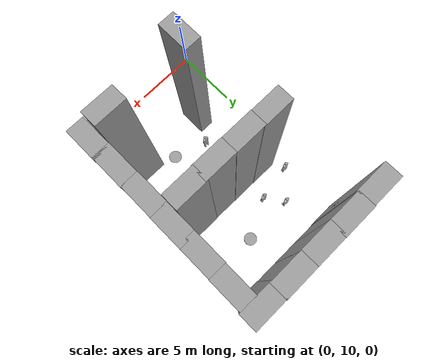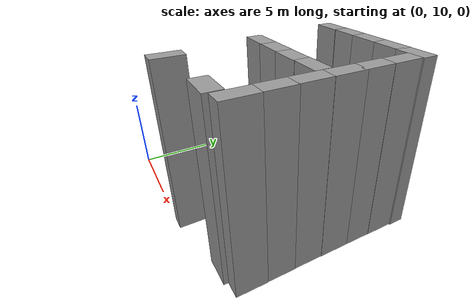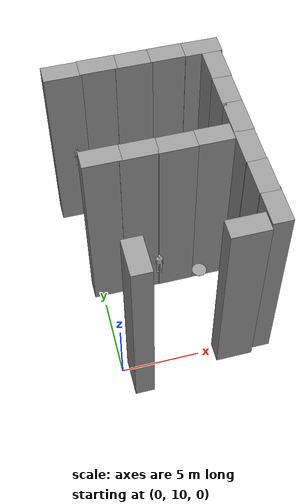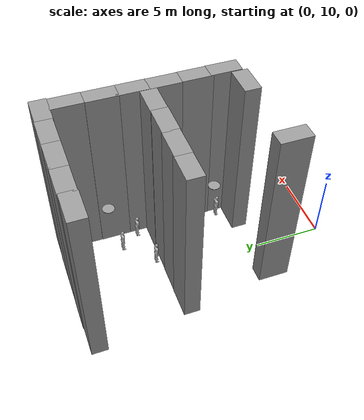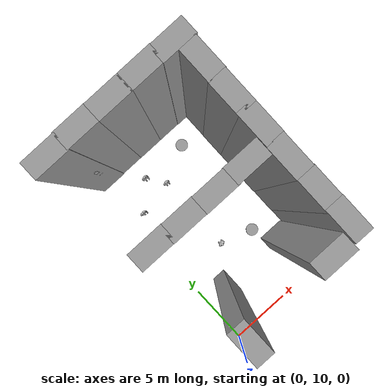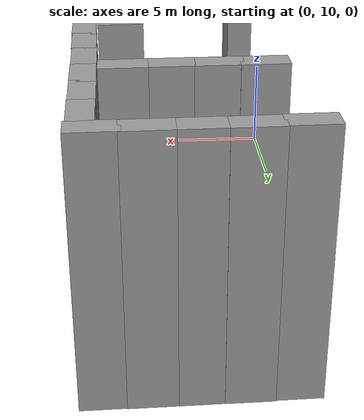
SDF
<sdf version="1.6">
 <model name="indoor_2">
  <link name="link_0_clone_2_clone_1_clone_clone">
   <pose>6.77843 15.9154 0.5 0 -0 0</pose>
   <inertial>
    <mass>0.0318769</mass>
    <inertia>
     <ixx>0.00199501</ixx>
     <ixy>0</ixy>
     <ixz>0</ixz>
     <iyy>0.00199501</iyy>
     <iyz>0</iyz>
     <izz>0.00398461</izz>
    </inertia>
   </inertial>
   <visual name="visual">
    <geometry><cylinder><radius>0.5</radius><length>0.0318771</length></cylinder></geometry>
    <material>
     <lighting>1</lighting>
     <script><uri>file://media/materials/scripts/gazebo.material</uri><name>Gazebo/Grey</name></script>
     <ambient>0.3 0.3 0.3 1</ambient>
     <diffuse>0.7 0.7 0.7 1</diffuse>
     <specular>0.01 0.01 0.01 1</specular>
     <emissive>0 0 0 1</emissive>
     <shader type="pixel"/>
    </material>
   </visual>
   <collision name="collision">
    <geometry><cylinder><radius>0.5</radius><length>0.031877</length></cylinder></geometry>
    <surface>
     <friction>
      <ode><mu>1</mu><mu2>1</mu2><fdir1>0 0 0</fdir1><slip1>0</slip1><slip2>0</slip2></ode>
      <torsional>
       <coefficient>1</coefficient>
       <patch_radius>0</patch_radius>
       <surface_radius>0</surface_radius>
       <use_patch_radius>1</use_patch_radius>
       <ode><slip>0</slip></ode>
      </torsional>
     </friction>
     <bounce><restitution_coefficient>0</restitution_coefficient><threshold>1e+06</threshold></bounce>
     <contact>
      <collide_without_contact>0</collide_without_contact>
      <collide_without_contact_bitmask>1</collide_without_contact_bitmask>
      <collide_bitmask>1</collide_bitmask>
      <ode>
       <soft_cfm>0</soft_cfm>
       <soft_erp>0.2</soft_erp>
       <kp>1e+13</kp>
       <kd>1</kd>
       <max_vel>0.01</max_vel>
       <min_depth>0</min_depth>
      </ode>
      <bullet>
       <split_impulse>1</split_impulse>
       <split_impulse_penetration_threshold>-0.01</split_impulse_penetration_threshold>
       <soft_cfm>0</soft_cfm>
       <soft_erp>0.2</soft_erp>
       <kp>1e+13</kp>
       <kd>1</kd>
      </bullet>
     </contact>
    </surface>
   </collision>
  </link>
  <link name="link_0_clone_2_clone_4">
   <pose>7.18124 24.9154 0.5 0 -0 0</pose>
   <inertial>
    <mass>0.0318769</mass>
    <inertia>
     <ixx>0.00199501</ixx>
     <ixy>0</ixy>
     <ixz>0</ixz>
     <iyy>0.00199501</iyy>
     <iyz>0</iyz>
     <izz>0.00398461</izz>
    </inertia>
   </inertial>
   <visual name="visual">
    <geometry><cylinder><radius>0.5</radius><length>0.0318771</length></cylinder></geometry>
    <material>
     <lighting>1</lighting>
     <script><uri>file://media/materials/scripts/gazebo.material</uri><name>Gazebo/Grey</name></script>
     <ambient>0.3 0.3 0.3 1</ambient>
     <diffuse>0.7 0.7 0.7 1</diffuse>
     <specular>0.01 0.01 0.01 1</specular>
     <emissive>0 0 0 1</emissive>
     <shader type="pixel"/>
    </material>
   </visual>
   <collision name="collision">
    <geometry><cylinder><radius>0.5</radius><length>0.031877</length></cylinder></geometry>
    <surface>
     <friction>
      <ode><mu>1</mu><mu2>1</mu2><fdir1>0 0 0</fdir1><slip1>0</slip1><slip2>0</slip2></ode>
      <torsional>
       <coefficient>1</coefficient>
       <patch_radius>0</patch_radius>
       <surface_radius>0</surface_radius>
       <use_patch_radius>1</use_patch_radius>
       <ode><slip>0</slip></ode>
      </torsional>
     </friction>
     <bounce><restitution_coefficient>0</restitution_coefficient><threshold>1e+06</threshold></bounce>
     <contact>
      <collide_without_contact>0</collide_without_contact>
      <collide_without_contact_bitmask>1</collide_without_contact_bitmask>
      <collide_bitmask>1</collide_bitmask>
      <ode>
       <soft_cfm>0</soft_cfm>
       <soft_erp>0.2</soft_erp>
       <kp>1e+13</kp>
       <kd>1</kd>
       <max_vel>0.01</max_vel>
       <min_depth>0</min_depth>
      </ode>
      <bullet>
       <split_impulse>1</split_impulse>
       <split_impulse_penetration_threshold>-0.01</split_impulse_penetration_threshold>
       <soft_cfm>0</soft_cfm>
       <soft_erp>0.2</soft_erp>
       <kp>1e+13</kp>
       <kd>1</kd>
      </bullet>
     </contact>
    </surface>
   </collision>
  </link>
  <link name="link_clone_17_clone_clone_0_clone_0">
   <pose>8.63865 12.9154 1.4 0 0 -1.56938</pose>
   <inertial>
    <inertia><ixx>nan</ixx><ixy>0</ixy><ixz>0</ixz><iyy>nan</iyy><iyz>0</iyz><izz>nan</izz></inertia>
    <mass>0</mass>
   </inertial>
   <visual name="visual">
    <cast_shadows>0</cast_shadows>
    <geometry><box><size>1.37568 2.64508 15.4314</size></box></geometry>
    <material>
     <script>
      <uri>model://grey_wall/materials/scripts</uri>
      <uri>model://grey_wall/materials/textures</uri>
      <name>vrc/grey_wall</name>
     </script>
     <ambient>1 1 1 1</ambient>
     <diffuse>1 1 1 1</diffuse>
     <specular>0 0 0 1</specular>
     <emissive>0 0 0 1</emissive>
     <shader type="pixel"/>
    </material>
   </visual>
   <collision name="collision">
    <geometry><box><size>1.37568 2.64508 15.4314</size></box></geometry>
    <surface>
     <friction>
      <ode><mu>1</mu><mu2>1</mu2><fdir1>0 0 0</fdir1><slip1>0</slip1><slip2>0</slip2></ode>
      <torsional>
       <coefficient>1</coefficient>
       <patch_radius>0</patch_radius>
       <surface_radius>0</surface_radius>
       <use_patch_radius>1</use_patch_radius>
       <ode><slip>0</slip></ode>
      </torsional>
     </friction>
     <bounce><restitution_coefficient>0</restitution_coefficient><threshold>1e+06</threshold></bounce>
     <contact>
      <collide_without_contact>0</collide_without_contact>
      <collide_without_contact_bitmask>1</collide_without_contact_bitmask>
      <collide_bitmask>1</collide_bitmask>
      <ode>
       <soft_cfm>0</soft_cfm>
       <soft_erp>0.2</soft_erp>
       <kp>1e+13</kp>
       <kd>1</kd>
       <max_vel>0.01</max_vel>
       <min_depth>0</min_depth>
      </ode>
      <bullet>
       <split_impulse>1</split_impulse>
       <split_impulse_penetration_threshold>-0.01</split_impulse_penetration_threshold>
       <soft_cfm>0</soft_cfm>
       <soft_erp>0.2</soft_erp>
       <kp>1e+13</kp>
       <kd>1</kd>
      </bullet>
     </contact>
    </surface>
   </collision>
  </link>
  <link name="link_clone_17_clone_clone_0_clone_0_clone">
   <pose>10.1812 28.4576 1.4 0 0 -1.56938</pose>
   <inertial>
    <inertia><ixx>nan</ixx><ixy>0</ixy><ixz>0</ixz><iyy>nan</iyy><iyz>0</iyz><izz>nan</izz></inertia>
    <mass>0</mass>
   </inertial>
   <visual name="visual">
    <cast_shadows>0</cast_shadows>
    <geometry><box><size>1.37568 2.64508 15.4314</size></box></geometry>
    <material>
     <script>
      <uri>model://grey_wall/materials/scripts</uri>
      <uri>model://grey_wall/materials/textures</uri>
      <name>vrc/grey_wall</name>
     </script>
     <ambient>1 1 1 1</ambient>
     <diffuse>1 1 1 1</diffuse>
     <specular>0 0 0 1</specular>
     <emissive>0 0 0 1</emissive>
     <shader type="pixel"/>
    </material>
   </visual>
   <collision name="collision">
    <geometry><box><size>1.37568 2.64508 15.4314</size></box></geometry>
    <surface>
     <friction>
      <ode><mu>1</mu><mu2>1</mu2><fdir1>0 0 0</fdir1><slip1>0</slip1><slip2>0</slip2></ode>
      <torsional>
       <coefficient>1</coefficient>
       <patch_radius>0</patch_radius>
       <surface_radius>0</surface_radius>
       <use_patch_radius>1</use_patch_radius>
       <ode><slip>0</slip></ode>
      </torsional>
     </friction>
     <bounce><restitution_coefficient>0</restitution_coefficient><threshold>1e+06</threshold></bounce>
     <contact>
      <collide_without_contact>0</collide_without_contact>
      <collide_without_contact_bitmask>1</collide_without_contact_bitmask>
      <collide_bitmask>1</collide_bitmask>
      <ode>
       <soft_cfm>0</soft_cfm>
       <soft_erp>0.2</soft_erp>
       <kp>1e+13</kp>
       <kd>1</kd>
       <max_vel>0.01</max_vel>
       <min_depth>0</min_depth>
      </ode>
      <bullet>
       <split_impulse>1</split_impulse>
       <split_impulse_penetration_threshold>-0.01</split_impulse_penetration_threshold>
       <soft_cfm>0</soft_cfm>
       <soft_erp>0.2</soft_erp>
       <kp>1e+13</kp>
       <kd>1</kd>
      </bullet>
     </contact>
    </surface>
   </collision>
  </link>
  <link name="link_clone_17_clone_clone_0_clone_0_clone_0">
   <pose>7.71607 28.4885 1.4 0 0 -1.56938</pose>
   <inertial>
    <inertia><ixx>nan</ixx><ixy>0</ixy><ixz>0</ixz><iyy>nan</iyy><iyz>0</iyz><izz>nan</izz></inertia>
    <mass>0</mass>
   </inertial>
   <visual name="visual">
    <cast_shadows>0</cast_shadows>
    <geometry><box><size>1.37568 2.64508 15.4314</size></box></geometry>
    <material>
     <script>
      <uri>model://grey_wall/materials/scripts</uri>
      <uri>model://grey_wall/materials/textures</uri>
      <name>vrc/grey_wall</name>
     </script>
     <ambient>1 1 1 1</ambient>
     <diffuse>1 1 1 1</diffuse>
     <specular>0 0 0 1</specular>
     <emissive>0 0 0 1</emissive>
     <shader type="pixel"/>
    </material>
   </visual>
   <collision name="collision">
    <geometry><box><size>1.37568 2.64508 15.4314</size></box></geometry>
    <surface>
     <friction>
      <ode><mu>1</mu><mu2>1</mu2><fdir1>0 0 0</fdir1><slip1>0</slip1><slip2>0</slip2></ode>
      <torsional>
       <coefficient>1</coefficient>
       <patch_radius>0</patch_radius>
       <surface_radius>0</surface_radius>
       <use_patch_radius>1</use_patch_radius>
       <ode><slip>0</slip></ode>
      </torsional>
     </friction>
     <bounce><restitution_coefficient>0</restitution_coefficient><threshold>1e+06</threshold></bounce>
     <contact>
      <collide_without_contact>0</collide_without_contact>
      <collide_without_contact_bitmask>1</collide_without_contact_bitmask>
      <collide_bitmask>1</collide_bitmask>
      <ode>
       <soft_cfm>0</soft_cfm>
       <soft_erp>0.2</soft_erp>
       <kp>1e+13</kp>
       <kd>1</kd>
       <max_vel>0.01</max_vel>
       <min_depth>0</min_depth>
      </ode>
      <bullet>
       <split_impulse>1</split_impulse>
       <split_impulse_penetration_threshold>-0.01</split_impulse_penetration_threshold>
       <soft_cfm>0</soft_cfm>
       <soft_erp>0.2</soft_erp>
       <kp>1e+13</kp>
       <kd>1</kd>
      </bullet>
     </contact>
    </surface>
   </collision>
  </link>
  <link name="link_clone_17_clone_clone_0_clone_0_clone_1">
   <pose>5.18124 28.4831 1.4 0 0 -1.56938</pose>
   <inertial>
    <inertia><ixx>nan</ixx><ixy>0</ixy><ixz>0</ixz><iyy>nan</iyy><iyz>0</iyz><izz>nan</izz></inertia>
    <mass>0</mass>
   </inertial>
   <visual name="visual">
    <cast_shadows>0</cast_shadows>
    <geometry><box><size>1.37568 2.64508 15.4314</size></box></geometry>
    <material>
     <script>
      <uri>model://grey_wall/materials/scripts</uri>
      <uri>model://grey_wall/materials/textures</uri>
      <name>vrc/grey_wall</name>
     </script>
     <ambient>1 1 1 1</ambient>
     <diffuse>1 1 1 1</diffuse>
     <specular>0 0 0 1</specular>
     <emissive>0 0 0 1</emissive>
     <shader type="pixel"/>
    </material>
   </visual>
   <collision name="collision">
    <geometry><box><size>1.37568 2.64508 15.4314</size></box></geometry>
    <surface>
     <friction>
      <ode><mu>1</mu><mu2>1</mu2><fdir1>0 0 0</fdir1><slip1>0</slip1><slip2>0</slip2></ode>
      <torsional>
       <coefficient>1</coefficient>
       <patch_radius>0</patch_radius>
       <surface_radius>0</surface_radius>
       <use_patch_radius>1</use_patch_radius>
       <ode><slip>0</slip></ode>
      </torsional>
     </friction>
     <bounce><restitution_coefficient>0</restitution_coefficient><threshold>1e+06</threshold></bounce>
     <contact>
      <collide_without_contact>0</collide_without_contact>
      <collide_without_contact_bitmask>1</collide_without_contact_bitmask>
      <collide_bitmask>1</collide_bitmask>
      <ode>
       <soft_cfm>0</soft_cfm>
       <soft_erp>0.2</soft_erp>
       <kp>1e+13</kp>
       <kd>1</kd>
       <max_vel>0.01</max_vel>
       <min_depth>0</min_depth>
      </ode>
      <bullet>
       <split_impulse>1</split_impulse>
       <split_impulse_penetration_threshold>-0.01</split_impulse_penetration_threshold>
       <soft_cfm>0</soft_cfm>
       <soft_erp>0.2</soft_erp>
       <kp>1e+13</kp>
       <kd>1</kd>
      </bullet>
     </contact>
    </surface>
   </collision>
  </link>
  <link name="link_clone_17_clone_clone_0_clone_0_clone_2">
   <pose>2.70043 28.4938 1.4 0 0 -1.56938</pose>
   <inertial>
    <inertia><ixx>nan</ixx><ixy>0</ixy><ixz>0</ixz><iyy>nan</iyy><iyz>0</iyz><izz>nan</izz></inertia>
    <mass>0</mass>
   </inertial>
   <visual name="visual">
    <cast_shadows>0</cast_shadows>
    <geometry><box><size>1.37568 2.64508 15.4314</size></box></geometry>
    <material>
     <script>
      <uri>model://grey_wall/materials/scripts</uri>
      <uri>model://grey_wall/materials/textures</uri>
      <name>vrc/grey_wall</name>
     </script>
     <ambient>1 1 1 1</ambient>
     <diffuse>1 1 1 1</diffuse>
     <specular>0 0 0 1</specular>
     <emissive>0 0 0 1</emissive>
     <shader type="pixel"/>
    </material>
   </visual>
   <collision name="collision">
    <geometry><box><size>1.37568 2.64508 15.4314</size></box></geometry>
    <surface>
     <friction>
      <ode><mu>1</mu><mu2>1</mu2><fdir1>0 0 0</fdir1><slip1>0</slip1><slip2>0</slip2></ode>
      <torsional>
       <coefficient>1</coefficient>
       <patch_radius>0</patch_radius>
       <surface_radius>0</surface_radius>
       <use_patch_radius>1</use_patch_radius>
       <ode><slip>0</slip></ode>
      </torsional>
     </friction>
     <bounce><restitution_coefficient>0</restitution_coefficient><threshold>1e+06</threshold></bounce>
     <contact>
      <collide_without_contact>0</collide_without_contact>
      <collide_without_contact_bitmask>1</collide_without_contact_bitmask>
      <collide_bitmask>1</collide_bitmask>
      <ode>
       <soft_cfm>0</soft_cfm>
       <soft_erp>0.2</soft_erp>
       <kp>1e+13</kp>
       <kd>1</kd>
       <max_vel>0.01</max_vel>
       <min_depth>0</min_depth>
      </ode>
      <bullet>
       <split_impulse>1</split_impulse>
       <split_impulse_penetration_threshold>-0.01</split_impulse_penetration_threshold>
       <soft_cfm>0</soft_cfm>
       <soft_erp>0.2</soft_erp>
       <kp>1e+13</kp>
       <kd>1</kd>
      </bullet>
     </contact>
    </surface>
   </collision>
  </link>
  <link name="link_clone_17_clone_clone_0_clone_0_clone_3">
   <pose>0.181241 28.4384 1.4 0 0 -1.56938</pose>
   <inertial>
    <inertia><ixx>nan</ixx><ixy>0</ixy><ixz>0</ixz><iyy>nan</iyy><iyz>0</iyz><izz>nan</izz></inertia>
    <mass>0</mass>
   </inertial>
   <visual name="visual">
    <cast_shadows>0</cast_shadows>
    <geometry><box><size>1.37568 2.64508 15.4314</size></box></geometry>
    <material>
     <script>
      <uri>model://grey_wall/materials/scripts</uri>
      <uri>model://grey_wall/materials/textures</uri>
      <name>vrc/grey_wall</name>
     </script>
     <ambient>1 1 1 1</ambient>
     <diffuse>1 1 1 1</diffuse>
     <specular>0 0 0 1</specular>
     <emissive>0 0 0 1</emissive>
     <shader type="pixel"/>
    </material>
   </visual>
   <collision name="collision">
    <geometry><box><size>1.37568 2.64508 15.4314</size></box></geometry>
    <surface>
     <friction>
      <ode><mu>1</mu><mu2>1</mu2><fdir1>0 0 0</fdir1><slip1>0</slip1><slip2>0</slip2></ode>
      <torsional>
       <coefficient>1</coefficient>
       <patch_radius>0</patch_radius>
       <surface_radius>0</surface_radius>
       <use_patch_radius>1</use_patch_radius>
       <ode><slip>0</slip></ode>
      </torsional>
     </friction>
     <bounce><restitution_coefficient>0</restitution_coefficient><threshold>1e+06</threshold></bounce>
     <contact>
      <collide_without_contact>0</collide_without_contact>
      <collide_without_contact_bitmask>1</collide_without_contact_bitmask>
      <collide_bitmask>1</collide_bitmask>
      <ode>
       <soft_cfm>0</soft_cfm>
       <soft_erp>0.2</soft_erp>
       <kp>1e+13</kp>
       <kd>1</kd>
       <max_vel>0.01</max_vel>
       <min_depth>0</min_depth>
      </ode>
      <bullet>
       <split_impulse>1</split_impulse>
       <split_impulse_penetration_threshold>-0.01</split_impulse_penetration_threshold>
       <soft_cfm>0</soft_cfm>
       <soft_erp>0.2</soft_erp>
       <kp>1e+13</kp>
       <kd>1</kd>
      </bullet>
     </contact>
    </surface>
   </collision>
  </link>
  <link name="link_clone_17_clone_clone_0_clone_1">
   <pose>8.64529 20.3476 1.4 0 0 -1.56938</pose>
   <inertial>
    <inertia><ixx>nan</ixx><ixy>0</ixy><ixz>0</ixz><iyy>nan</iyy><iyz>0</iyz><izz>nan</izz></inertia>
    <mass>0</mass>
   </inertial>
   <visual name="visual">
    <cast_shadows>0</cast_shadows>
    <geometry><box><size>1.37568 2.64508 15.4314</size></box></geometry>
    <material>
     <script>
      <uri>model://grey_wall/materials/scripts</uri>
      <uri>model://grey_wall/materials/textures</uri>
      <name>vrc/grey_wall</name>
     </script>
     <ambient>1 1 1 1</ambient>
     <diffuse>1 1 1 1</diffuse>
     <specular>0 0 0 1</specular>
     <emissive>0 0 0 1</emissive>
     <shader type="pixel"/>
    </material>
   </visual>
   <collision name="collision">
    <geometry><box><size>1.37568 2.64508 15.4314</size></box></geometry>
    <surface>
     <friction>
      <ode><mu>1</mu><mu2>1</mu2><fdir1>0 0 0</fdir1><slip1>0</slip1><slip2>0</slip2></ode>
      <torsional>
       <coefficient>1</coefficient>
       <patch_radius>0</patch_radius>
       <surface_radius>0</surface_radius>
       <use_patch_radius>1</use_patch_radius>
       <ode><slip>0</slip></ode>
      </torsional>
     </friction>
     <bounce><restitution_coefficient>0</restitution_coefficient><threshold>1e+06</threshold></bounce>
     <contact>
      <collide_without_contact>0</collide_without_contact>
      <collide_without_contact_bitmask>1</collide_without_contact_bitmask>
      <collide_bitmask>1</collide_bitmask>
      <ode>
       <soft_cfm>0</soft_cfm>
       <soft_erp>0.2</soft_erp>
       <kp>1e+13</kp>
       <kd>1</kd>
       <max_vel>0.01</max_vel>
       <min_depth>0</min_depth>
      </ode>
      <bullet>
       <split_impulse>1</split_impulse>
       <split_impulse_penetration_threshold>-0.01</split_impulse_penetration_threshold>
       <soft_cfm>0</soft_cfm>
       <soft_erp>0.2</soft_erp>
       <kp>1e+13</kp>
       <kd>1</kd>
      </bullet>
     </contact>
    </surface>
   </collision>
  </link>
  <link name="link_clone_17_clone_clone_0_clone_2">
   <pose>6.18124 20.3164 1.4 0 0 -1.56938</pose>
   <inertial>
    <inertia><ixx>nan</ixx><ixy>0</ixy><ixz>0</ixz><iyy>nan</iyy><iyz>0</iyz><izz>nan</izz></inertia>
    <mass>0</mass>
   </inertial>
   <visual name="visual">
    <cast_shadows>0</cast_shadows>
    <geometry><box><size>1.37568 2.64508 15.4314</size></box></geometry>
    <material>
     <script>
      <uri>model://grey_wall/materials/scripts</uri>
      <uri>model://grey_wall/materials/textures</uri>
      <name>vrc/grey_wall</name>
     </script>
     <ambient>1 1 1 1</ambient>
     <diffuse>1 1 1 1</diffuse>
     <specular>0 0 0 1</specular>
     <emissive>0 0 0 1</emissive>
     <shader type="pixel"/>
    </material>
   </visual>
   <collision name="collision">
    <geometry><box><size>1.37568 2.64508 15.4314</size></box></geometry>
    <surface>
     <friction>
      <ode><mu>1</mu><mu2>1</mu2><fdir1>0 0 0</fdir1><slip1>0</slip1><slip2>0</slip2></ode>
      <torsional>
       <coefficient>1</coefficient>
       <patch_radius>0</patch_radius>
       <surface_radius>0</surface_radius>
       <use_patch_radius>1</use_patch_radius>
       <ode><slip>0</slip></ode>
      </torsional>
     </friction>
     <bounce><restitution_coefficient>0</restitution_coefficient><threshold>1e+06</threshold></bounce>
     <contact>
      <collide_without_contact>0</collide_without_contact>
      <collide_without_contact_bitmask>1</collide_without_contact_bitmask>
      <collide_bitmask>1</collide_bitmask>
      <ode>
       <soft_cfm>0</soft_cfm>
       <soft_erp>0.2</soft_erp>
       <kp>1e+13</kp>
       <kd>1</kd>
       <max_vel>0.01</max_vel>
       <min_depth>0</min_depth>
      </ode>
      <bullet>
       <split_impulse>1</split_impulse>
       <split_impulse_penetration_threshold>-0.01</split_impulse_penetration_threshold>
       <soft_cfm>0</soft_cfm>
       <soft_erp>0.2</soft_erp>
       <kp>1e+13</kp>
       <kd>1</kd>
      </bullet>
     </contact>
    </surface>
   </collision>
  </link>
  <link name="link_clone_17_clone_clone_0_clone_3">
   <pose>3.60637 20.3402 1.4 0 0 -1.56938</pose>
   <inertial>
    <inertia><ixx>nan</ixx><ixy>0</ixy><ixz>0</ixz><iyy>nan</iyy><iyz>0</iyz><izz>nan</izz></inertia>
    <mass>0</mass>
   </inertial>
   <visual name="visual">
    <cast_shadows>0</cast_shadows>
    <geometry><box><size>1.37568 2.64508 15.4314</size></box></geometry>
    <material>
     <script>
      <uri>model://grey_wall/materials/scripts</uri>
      <uri>model://grey_wall/materials/textures</uri>
      <name>vrc/grey_wall</name>
     </script>
     <ambient>1 1 1 1</ambient>
     <diffuse>1 1 1 1</diffuse>
     <specular>0 0 0 1</specular>
     <emissive>0 0 0 1</emissive>
     <shader type="pixel"/>
    </material>
   </visual>
   <collision name="collision">
    <geometry><box><size>1.37568 2.64508 15.4314</size></box></geometry>
    <surface>
     <friction>
      <ode><mu>1</mu><mu2>1</mu2><fdir1>0 0 0</fdir1><slip1>0</slip1><slip2>0</slip2></ode>
      <torsional>
       <coefficient>1</coefficient>
       <patch_radius>0</patch_radius>
       <surface_radius>0</surface_radius>
       <use_patch_radius>1</use_patch_radius>
       <ode><slip>0</slip></ode>
      </torsional>
     </friction>
     <bounce><restitution_coefficient>0</restitution_coefficient><threshold>1e+06</threshold></bounce>
     <contact>
      <collide_without_contact>0</collide_without_contact>
      <collide_without_contact_bitmask>1</collide_without_contact_bitmask>
      <collide_bitmask>1</collide_bitmask>
      <ode>
       <soft_cfm>0</soft_cfm>
       <soft_erp>0.2</soft_erp>
       <kp>1e+13</kp>
       <kd>1</kd>
       <max_vel>0.01</max_vel>
       <min_depth>0</min_depth>
      </ode>
      <bullet>
       <split_impulse>1</split_impulse>
       <split_impulse_penetration_threshold>-0.01</split_impulse_penetration_threshold>
       <soft_cfm>0</soft_cfm>
       <soft_erp>0.2</soft_erp>
       <kp>1e+13</kp>
       <kd>1</kd>
      </bullet>
     </contact>
    </surface>
   </collision>
  </link>
  <link name="link_clone_17_clone_clone_0_clone_4">
   <pose>1.18124 20.3607 1.4 0 0 -1.56938</pose>
   <inertial>
    <inertia><ixx>nan</ixx><ixy>0</ixy><ixz>0</ixz><iyy>nan</iyy><iyz>0</iyz><izz>nan</izz></inertia>
    <mass>0</mass>
   </inertial>
   <visual name="visual">
    <cast_shadows>0</cast_shadows>
    <geometry><box><size>1.37568 2.64508 15.4314</size></box></geometry>
    <material>
     <script>
      <uri>model://grey_wall/materials/scripts</uri>
      <uri>model://grey_wall/materials/textures</uri>
      <name>vrc/grey_wall</name>
     </script>
     <ambient>1 1 1 1</ambient>
     <diffuse>1 1 1 1</diffuse>
     <specular>0 0 0 1</specular>
     <emissive>0 0 0 1</emissive>
     <shader type="pixel"/>
    </material>
   </visual>
   <collision name="collision">
    <geometry><box><size>1.37568 2.64508 15.4314</size></box></geometry>
    <surface>
     <friction>
      <ode><mu>1</mu><mu2>1</mu2><fdir1>0 0 0</fdir1><slip1>0</slip1><slip2>0</slip2></ode>
      <torsional>
       <coefficient>1</coefficient>
       <patch_radius>0</patch_radius>
       <surface_radius>0</surface_radius>
       <use_patch_radius>1</use_patch_radius>
       <ode><slip>0</slip></ode>
      </torsional>
     </friction>
     <bounce><restitution_coefficient>0</restitution_coefficient><threshold>1e+06</threshold></bounce>
     <contact>
      <collide_without_contact>0</collide_without_contact>
      <collide_without_contact_bitmask>1</collide_without_contact_bitmask>
      <collide_bitmask>1</collide_bitmask>
      <ode>
       <soft_cfm>0</soft_cfm>
       <soft_erp>0.2</soft_erp>
       <kp>1e+13</kp>
       <kd>1</kd>
       <max_vel>0.01</max_vel>
       <min_depth>0</min_depth>
      </ode>
      <bullet>
       <split_impulse>1</split_impulse>
       <split_impulse_penetration_threshold>-0.01</split_impulse_penetration_threshold>
       <soft_cfm>0</soft_cfm>
       <soft_erp>0.2</soft_erp>
       <kp>1e+13</kp>
       <kd>1</kd>
      </bullet>
     </contact>
    </surface>
   </collision>
  </link>
  <link name="link_clone_6_clone_5">
   <pose>1.68267 12.4401 1.4 0 -0 0</pose>
   <inertial>
    <inertia><ixx>nan</ixx><ixy>0</ixy><ixz>0</ixz><iyy>nan</iyy><iyz>0</iyz><izz>nan</izz></inertia>
    <mass>0</mass>
   </inertial>
   <visual name="visual">
    <cast_shadows>0</cast_shadows>
    <geometry><box><size>1.37568 2.64508 15.4314</size></box></geometry>
    <material>
     <script>
      <uri>model://grey_wall/materials/scripts</uri>
      <uri>model://grey_wall/materials/textures</uri>
      <name>vrc/grey_wall</name>
     </script>
     <ambient>1 1 1 1</ambient>
     <diffuse>1 1 1 1</diffuse>
     <specular>0 0 0 1</specular>
     <emissive>0 0 0 1</emissive>
     <shader type="pixel"/>
    </material>
   </visual>
   <collision name="collision">
    <geometry><box><size>1.37568 2.64508 15.4314</size></box></geometry>
    <surface>
     <friction>
      <ode><mu>1</mu><mu2>1</mu2><fdir1>0 0 0</fdir1><slip1>0</slip1><slip2>0</slip2></ode>
      <torsional>
       <coefficient>1</coefficient>
       <patch_radius>0</patch_radius>
       <surface_radius>0</surface_radius>
       <use_patch_radius>1</use_patch_radius>
       <ode><slip>0</slip></ode>
      </torsional>
     </friction>
     <bounce><restitution_coefficient>0</restitution_coefficient><threshold>1e+06</threshold></bounce>
     <contact>
      <collide_without_contact>0</collide_without_contact>
      <collide_without_contact_bitmask>1</collide_without_contact_bitmask>
      <collide_bitmask>1</collide_bitmask>
      <ode>
       <soft_cfm>0</soft_cfm>
       <soft_erp>0.2</soft_erp>
       <kp>1e+13</kp>
       <kd>1</kd>
       <max_vel>0.01</max_vel>
       <min_depth>0</min_depth>
      </ode>
      <bullet>
       <split_impulse>1</split_impulse>
       <split_impulse_penetration_threshold>-0.01</split_impulse_penetration_threshold>
       <soft_cfm>0</soft_cfm>
       <soft_erp>0.2</soft_erp>
       <kp>1e+13</kp>
       <kd>1</kd>
      </bullet>
     </contact>
    </surface>
   </collision>
  </link>
  <link name="link_clone_6_clone_clone_10">
   <pose>10.6888 21.5093 1.4 0 -0 0</pose>
   <inertial>
    <inertia><ixx>nan</ixx><ixy>0</ixy><ixz>0</ixz><iyy>nan</iyy><iyz>0</iyz><izz>nan</izz></inertia>
    <mass>0</mass>
   </inertial>
   <visual name="visual">
    <cast_shadows>0</cast_shadows>
    <geometry><box><size>1.37568 2.64508 15.4314</size></box></geometry>
    <material>
     <script>
      <uri>model://grey_wall/materials/scripts</uri>
      <uri>model://grey_wall/materials/textures</uri>
      <name>vrc/grey_wall</name>
     </script>
     <ambient>1 1 1 1</ambient>
     <diffuse>1 1 1 1</diffuse>
     <specular>0 0 0 1</specular>
     <emissive>0 0 0 1</emissive>
     <shader type="pixel"/>
    </material>
   </visual>
   <collision name="collision">
    <geometry><box><size>1.37568 2.64508 15.4314</size></box></geometry>
    <surface>
     <friction>
      <ode><mu>1</mu><mu2>1</mu2><fdir1>0 0 0</fdir1><slip1>0</slip1><slip2>0</slip2></ode>
      <torsional>
       <coefficient>1</coefficient>
       <patch_radius>0</patch_radius>
       <surface_radius>0</surface_radius>
       <use_patch_radius>1</use_patch_radius>
       <ode><slip>0</slip></ode>
      </torsional>
     </friction>
     <bounce><restitution_coefficient>0</restitution_coefficient><threshold>1e+06</threshold></bounce>
     <contact>
      <collide_without_contact>0</collide_without_contact>
      <collide_without_contact_bitmask>1</collide_without_contact_bitmask>
      <collide_bitmask>1</collide_bitmask>
      <ode>
       <soft_cfm>0</soft_cfm>
       <soft_erp>0.2</soft_erp>
       <kp>1e+13</kp>
       <kd>1</kd>
       <max_vel>0.01</max_vel>
       <min_depth>0</min_depth>
      </ode>
      <bullet>
       <split_impulse>1</split_impulse>
       <split_impulse_penetration_threshold>-0.01</split_impulse_penetration_threshold>
       <soft_cfm>0</soft_cfm>
       <soft_erp>0.2</soft_erp>
       <kp>1e+13</kp>
       <kd>1</kd>
      </bullet>
     </contact>
    </surface>
   </collision>
  </link>
  <link name="link_clone_6_clone_clone_11">
   <pose>10.687 23.9154 1.4 0 -0 0</pose>
   <inertial>
    <inertia><ixx>nan</ixx><ixy>0</ixy><ixz>0</ixz><iyy>nan</iyy><iyz>0</iyz><izz>nan</izz></inertia>
    <mass>0</mass>
   </inertial>
   <visual name="visual">
    <cast_shadows>0</cast_shadows>
    <geometry><box><size>1.37568 2.64508 15.4314</size></box></geometry>
    <material>
     <script>
      <uri>model://grey_wall/materials/scripts</uri>
      <uri>model://grey_wall/materials/textures</uri>
      <name>vrc/grey_wall</name>
     </script>
     <ambient>1 1 1 1</ambient>
     <diffuse>1 1 1 1</diffuse>
     <specular>0 0 0 1</specular>
     <emissive>0 0 0 1</emissive>
     <shader type="pixel"/>
    </material>
   </visual>
   <collision name="collision">
    <geometry><box><size>1.37568 2.64508 15.4314</size></box></geometry>
    <surface>
     <friction>
      <ode><mu>1</mu><mu2>1</mu2><fdir1>0 0 0</fdir1><slip1>0</slip1><slip2>0</slip2></ode>
      <torsional>
       <coefficient>1</coefficient>
       <patch_radius>0</patch_radius>
       <surface_radius>0</surface_radius>
       <use_patch_radius>1</use_patch_radius>
       <ode><slip>0</slip></ode>
      </torsional>
     </friction>
     <bounce><restitution_coefficient>0</restitution_coefficient><threshold>1e+06</threshold></bounce>
     <contact>
      <collide_without_contact>0</collide_without_contact>
      <collide_without_contact_bitmask>1</collide_without_contact_bitmask>
      <collide_bitmask>1</collide_bitmask>
      <ode>
       <soft_cfm>0</soft_cfm>
       <soft_erp>0.2</soft_erp>
       <kp>1e+13</kp>
       <kd>1</kd>
       <max_vel>0.01</max_vel>
       <min_depth>0</min_depth>
      </ode>
      <bullet>
       <split_impulse>1</split_impulse>
       <split_impulse_penetration_threshold>-0.01</split_impulse_penetration_threshold>
       <soft_cfm>0</soft_cfm>
       <soft_erp>0.2</soft_erp>
       <kp>1e+13</kp>
       <kd>1</kd>
      </bullet>
     </contact>
    </surface>
   </collision>
  </link>
  <link name="link_clone_6_clone_clone_12">
   <pose>10.7136 26.5011 1.4 0 -0 0</pose>
   <inertial>
    <inertia><ixx>nan</ixx><ixy>0</ixy><ixz>0</ixz><iyy>nan</iyy><iyz>0</iyz><izz>nan</izz></inertia>
    <mass>0</mass>
   </inertial>
   <visual name="visual">
    <cast_shadows>0</cast_shadows>
    <geometry><box><size>1.37568 2.64508 15.4314</size></box></geometry>
    <material>
     <script>
      <uri>model://grey_wall/materials/scripts</uri>
      <uri>model://grey_wall/materials/textures</uri>
      <name>vrc/grey_wall</name>
     </script>
     <ambient>1 1 1 1</ambient>
     <diffuse>1 1 1 1</diffuse>
     <specular>0 0 0 1</specular>
     <emissive>0 0 0 1</emissive>
     <shader type="pixel"/>
    </material>
   </visual>
   <collision name="collision">
    <geometry><box><size>1.37568 2.64508 15.4314</size></box></geometry>
    <surface>
     <friction>
      <ode><mu>1</mu><mu2>1</mu2><fdir1>0 0 0</fdir1><slip1>0</slip1><slip2>0</slip2></ode>
      <torsional>
       <coefficient>1</coefficient>
       <patch_radius>0</patch_radius>
       <surface_radius>0</surface_radius>
       <use_patch_radius>1</use_patch_radius>
       <ode><slip>0</slip></ode>
      </torsional>
     </friction>
     <bounce><restitution_coefficient>0</restitution_coefficient><threshold>1e+06</threshold></bounce>
     <contact>
      <collide_without_contact>0</collide_without_contact>
      <collide_without_contact_bitmask>1</collide_without_contact_bitmask>
      <collide_bitmask>1</collide_bitmask>
      <ode>
       <soft_cfm>0</soft_cfm>
       <soft_erp>0.2</soft_erp>
       <kp>1e+13</kp>
       <kd>1</kd>
       <max_vel>0.01</max_vel>
       <min_depth>0</min_depth>
      </ode>
      <bullet>
       <split_impulse>1</split_impulse>
       <split_impulse_penetration_threshold>-0.01</split_impulse_penetration_threshold>
       <soft_cfm>0</soft_cfm>
       <soft_erp>0.2</soft_erp>
       <kp>1e+13</kp>
       <kd>1</kd>
      </bullet>
     </contact>
    </surface>
   </collision>
  </link>
  <link name="link_clone_6_clone_clone_7">
   <pose>10.7363 13.9154 1.4 0 -0 0</pose>
   <inertial>
    <inertia><ixx>nan</ixx><ixy>0</ixy><ixz>0</ixz><iyy>nan</iyy><iyz>0</iyz><izz>nan</izz></inertia>
    <mass>0</mass>
   </inertial>
   <visual name="visual">
    <cast_shadows>0</cast_shadows>
    <geometry><box><size>1.37568 2.64508 15.4314</size></box></geometry>
    <material>
     <script>
      <uri>model://grey_wall/materials/scripts</uri>
      <uri>model://grey_wall/materials/textures</uri>
      <name>vrc/grey_wall</name>
     </script>
     <ambient>1 1 1 1</ambient>
     <diffuse>1 1 1 1</diffuse>
     <specular>0 0 0 1</specular>
     <emissive>0 0 0 1</emissive>
     <shader type="pixel"/>
    </material>
   </visual>
   <collision name="collision">
    <geometry><box><size>1.37568 2.64508 15.4314</size></box></geometry>
    <surface>
     <friction>
      <ode><mu>1</mu><mu2>1</mu2><fdir1>0 0 0</fdir1><slip1>0</slip1><slip2>0</slip2></ode>
      <torsional>
       <coefficient>1</coefficient>
       <patch_radius>0</patch_radius>
       <surface_radius>0</surface_radius>
       <use_patch_radius>1</use_patch_radius>
       <ode><slip>0</slip></ode>
      </torsional>
     </friction>
     <bounce><restitution_coefficient>0</restitution_coefficient><threshold>1e+06</threshold></bounce>
     <contact>
      <collide_without_contact>0</collide_without_contact>
      <collide_without_contact_bitmask>1</collide_without_contact_bitmask>
      <collide_bitmask>1</collide_bitmask>
      <ode>
       <soft_cfm>0</soft_cfm>
       <soft_erp>0.2</soft_erp>
       <kp>1e+13</kp>
       <kd>1</kd>
       <max_vel>0.01</max_vel>
       <min_depth>0</min_depth>
      </ode>
      <bullet>
       <split_impulse>1</split_impulse>
       <split_impulse_penetration_threshold>-0.01</split_impulse_penetration_threshold>
       <soft_cfm>0</soft_cfm>
       <soft_erp>0.2</soft_erp>
       <kp>1e+13</kp>
       <kd>1</kd>
      </bullet>
     </contact>
    </surface>
   </collision>
  </link>
  <link name="link_clone_6_clone_clone_8">
   <pose>10.7031 16.3277 1.4 0 -0 0</pose>
   <inertial>
    <inertia><ixx>nan</ixx><ixy>0</ixy><ixz>0</ixz><iyy>nan</iyy><iyz>0</iyz><izz>nan</izz></inertia>
    <mass>0</mass>
   </inertial>
   <visual name="visual">
    <cast_shadows>0</cast_shadows>
    <geometry><box><size>1.37568 2.64508 15.4314</size></box></geometry>
    <material>
     <script>
      <uri>model://grey_wall/materials/scripts</uri>
      <uri>model://grey_wall/materials/textures</uri>
      <name>vrc/grey_wall</name>
     </script>
     <ambient>1 1 1 1</ambient>
     <diffuse>1 1 1 1</diffuse>
     <specular>0 0 0 1</specular>
     <emissive>0 0 0 1</emissive>
     <shader type="pixel"/>
    </material>
   </visual>
   <collision name="collision">
    <geometry><box><size>1.37568 2.64508 15.4314</size></box></geometry>
    <surface>
     <friction>
      <ode><mu>1</mu><mu2>1</mu2><fdir1>0 0 0</fdir1><slip1>0</slip1><slip2>0</slip2></ode>
      <torsional>
       <coefficient>1</coefficient>
       <patch_radius>0</patch_radius>
       <surface_radius>0</surface_radius>
       <use_patch_radius>1</use_patch_radius>
       <ode><slip>0</slip></ode>
      </torsional>
     </friction>
     <bounce><restitution_coefficient>0</restitution_coefficient><threshold>1e+06</threshold></bounce>
     <contact>
      <collide_without_contact>0</collide_without_contact>
      <collide_without_contact_bitmask>1</collide_without_contact_bitmask>
      <collide_bitmask>1</collide_bitmask>
      <ode>
       <soft_cfm>0</soft_cfm>
       <soft_erp>0.2</soft_erp>
       <kp>1e+13</kp>
       <kd>1</kd>
       <max_vel>0.01</max_vel>
       <min_depth>0</min_depth>
      </ode>
      <bullet>
       <split_impulse>1</split_impulse>
       <split_impulse_penetration_threshold>-0.01</split_impulse_penetration_threshold>
       <soft_cfm>0</soft_cfm>
       <soft_erp>0.2</soft_erp>
       <kp>1e+13</kp>
       <kd>1</kd>
      </bullet>
     </contact>
    </surface>
   </collision>
  </link>
  <link name="link_clone_6_clone_clone_9">
   <pose>10.6688 18.9154 1.4 0 -0 0</pose>
   <inertial>
    <inertia><ixx>nan</ixx><ixy>0</ixy><ixz>0</ixz><iyy>nan</iyy><iyz>0</iyz><izz>nan</izz></inertia>
    <mass>0</mass>
   </inertial>
   <visual name="visual">
    <cast_shadows>0</cast_shadows>
    <geometry><box><size>1.37568 2.64508 15.4314</size></box></geometry>
    <material>
     <script>
      <uri>model://grey_wall/materials/scripts</uri>
      <uri>model://grey_wall/materials/textures</uri>
      <name>vrc/grey_wall</name>
     </script>
     <ambient>1 1 1 1</ambient>
     <diffuse>1 1 1 1</diffuse>
     <specular>0 0 0 1</specular>
     <emissive>0 0 0 1</emissive>
     <shader type="pixel"/>
    </material>
   </visual>
   <collision name="collision">
    <geometry><box><size>1.37568 2.64508 15.4314</size></box></geometry>
    <surface>
     <friction>
      <ode><mu>1</mu><mu2>1</mu2><fdir1>0 0 0</fdir1><slip1>0</slip1><slip2>0</slip2></ode>
      <torsional>
       <coefficient>1</coefficient>
       <patch_radius>0</patch_radius>
       <surface_radius>0</surface_radius>
       <use_patch_radius>1</use_patch_radius>
       <ode><slip>0</slip></ode>
      </torsional>
     </friction>
     <bounce><restitution_coefficient>0</restitution_coefficient><threshold>1e+06</threshold></bounce>
     <contact>
      <collide_without_contact>0</collide_without_contact>
      <collide_without_contact_bitmask>1</collide_without_contact_bitmask>
      <collide_bitmask>1</collide_bitmask>
      <ode>
       <soft_cfm>0</soft_cfm>
       <soft_erp>0.2</soft_erp>
       <kp>1e+13</kp>
       <kd>1</kd>
       <max_vel>0.01</max_vel>
       <min_depth>0</min_depth>
      </ode>
      <bullet>
       <split_impulse>1</split_impulse>
       <split_impulse_penetration_threshold>-0.01</split_impulse_penetration_threshold>
       <soft_cfm>0</soft_cfm>
       <soft_erp>0.2</soft_erp>
       <kp>1e+13</kp>
       <kd>1</kd>
      </bullet>
     </contact>
    </surface>
   </collision>
  </link>
  <model name="person_standing_clone_11">
   <link name="link">
    <inertial>
     <pose>0 -0.1 0.95 0 -0 0</pose>
     <mass>80</mass>
     <inertia><ixx>24.88</ixx><ixy>0</ixy><ixz>0</ixz><iyy>25.73</iyy><iyz>0</iyz><izz>2.48</izz></inertia>
    </inertial>
    <collision name="bottom">
     <pose>0 -0.1 0.01 0 -0 0</pose>
     <geometry><box><size>0.5 0.35 0.02</size></box></geometry>
    </collision>
    <collision name="person">
     <pose>0 0 0.02 0.04 -0 0</pose>
     <geometry><mesh><uri>model://person_standing/meshes/standing.dae</uri></mesh></geometry>
    </collision>
    <visual name="visual">
     <pose>0 0 0.02 0.04 -0 0</pose>
     <geometry><mesh><uri>model://person_standing/meshes/standing.dae</uri></mesh></geometry>
    </visual>
   </link>
   <pose>4.18124 16.9154 0 0 -0 0</pose>
  </model>
  <model name="person_standing_clone_15_clone">
   <link name="link">
    <inertial>
     <pose>0 -0.1 0.95 0 -0 0</pose>
     <mass>80</mass>
     <inertia><ixx>24.88</ixx><ixy>0</ixy><ixz>0</ixz><iyy>25.73</iyy><iyz>0</iyz><izz>2.48</izz></inertia>
    </inertial>
    <collision name="bottom">
     <pose>0 -0.1 0.01 0 -0 0</pose>
     <geometry><box><size>0.5 0.35 0.02</size></box></geometry>
    </collision>
    <collision name="person">
     <pose>0 0 0.02 0.04 -0 0</pose>
     <geometry><mesh><uri>model://person_standing/meshes/standing.dae</uri></mesh></geometry>
    </collision>
    <visual name="visual">
     <pose>0 0 0.02 0.04 -0 0</pose>
     <geometry><mesh><uri>model://person_standing/meshes/standing.dae</uri></mesh></geometry>
    </visual>
   </link>
   <pose>0.595142 27.9154 0 0 -0 0</pose>
  </model>
  <model name="person_standing_clone_15_clone_0">
   <link name="link">
    <inertial>
     <pose>0 -0.1 0.95 0 -0 0</pose>
     <mass>80</mass>
     <inertia><ixx>24.88</ixx><ixy>0</ixy><ixz>0</ixz><iyy>25.73</iyy><iyz>0</iyz><izz>2.48</izz></inertia>
    </inertial>
    <collision name="bottom">
     <pose>0 -0.1 0.01 0 -0 0</pose>
     <geometry><box><size>0.5 0.35 0.02</size></box></geometry>
    </collision>
    <collision name="person">
     <pose>0 0 0.02 0.04 -0 0</pose>
     <geometry><mesh><uri>model://person_standing/meshes/standing.dae</uri></mesh></geometry>
    </collision>
    <visual name="visual">
     <pose>0 0 0.02 0.04 -0 0</pose>
     <geometry><mesh><uri>model://person_standing/meshes/standing.dae</uri></mesh></geometry>
    </visual>
   </link>
   <pose>4.18124 23.4748 0 0 -0 0</pose>
  </model>
  <model name="person_standing_clone_15_clone_1">
   <link name="link">
    <inertial>
     <pose>0 -0.1 0.95 0 -0 0</pose>
     <mass>80</mass>
     <inertia><ixx>24.88</ixx><ixy>0</ixy><ixz>0</ixz><iyy>25.73</iyy><iyz>0</iyz><izz>2.48</izz></inertia>
    </inertial>
    <collision name="bottom">
     <pose>0 -0.1 0.01 0 -0 0</pose>
     <geometry><box><size>0.5 0.35 0.02</size></box></geometry>
    </collision>
    <collision name="person">
     <pose>0 0 0.02 0.04 -0 0</pose>
     <geometry><mesh><uri>model://person_standing/meshes/standing.dae</uri></mesh></geometry>
    </collision>
    <visual name="visual">
     <pose>0 0 0.02 0.04 -0 0</pose>
     <geometry><mesh><uri>model://person_standing/meshes/standing.dae</uri></mesh></geometry>
    </visual>
   </link>
   <pose>3.18124 24.9154 0 0 -0 0</pose>
  </model>
  <model name="person_standing_clone_15_clone_2">
   <link name="link">
    <inertial>
     <pose>0 -0.1 0.95 0 -0 0</pose>
     <mass>80</mass>
     <inertia><ixx>24.88</ixx><ixy>0</ixy><ixz>0</ixz><iyy>25.73</iyy><iyz>0</iyz><izz>2.48</izz></inertia>
    </inertial>
    <collision name="bottom">
     <pose>0 -0.1 0.01 0 -0 0</pose>
     <geometry><box><size>0.5 0.35 0.02</size></box></geometry>
    </collision>
    <collision name="person">
     <pose>0 0 0.02 0.04 -0 0</pose>
     <geometry><mesh><uri>model://person_standing/meshes/standing.dae</uri></mesh></geometry>
    </collision>
    <visual name="visual">
     <pose>0 0 0.02 0.04 -0 0</pose>
     <geometry><mesh><uri>model://person_standing/meshes/standing.dae</uri></mesh></geometry>
    </visual>
   </link>
   <pose>1.18124 22.9154 0 0 -0 0</pose>
  </model>
  <static>1</static>
 </model>
</sdf>
